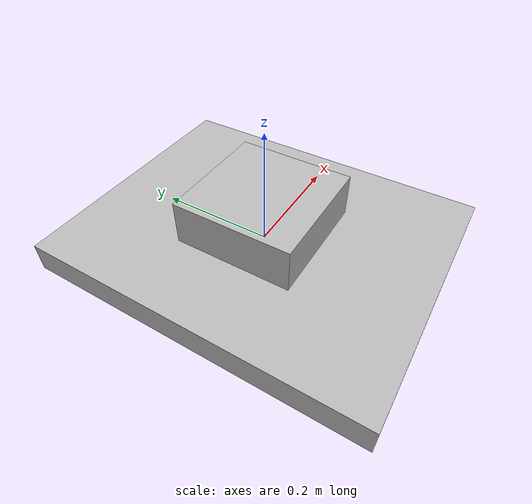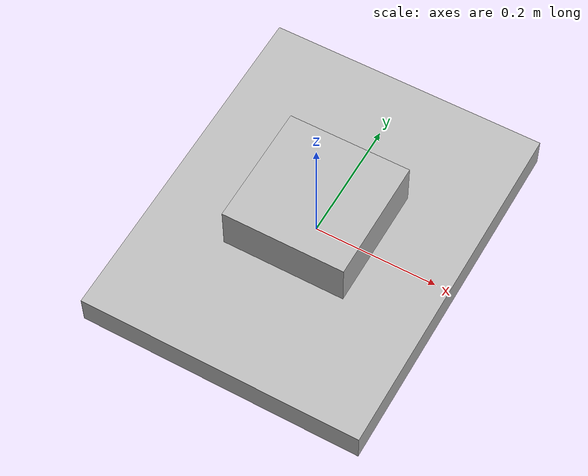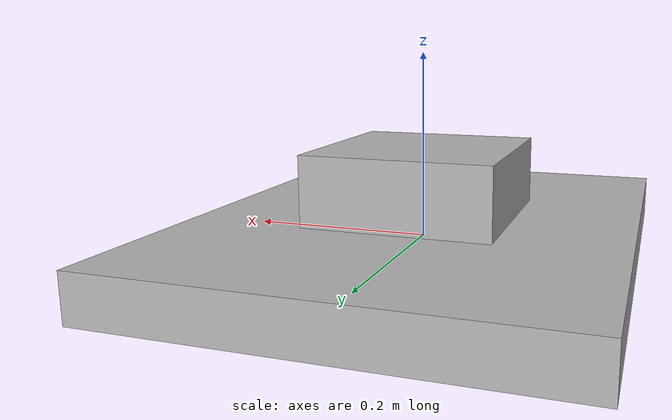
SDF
<?xml version="1.0" ?>
<sdf version="1.6">
<model name="scuba">
    <link name="base_link">
      <inertial>
        <pose>0 0 0 0 0 0</pose>
        <mass>13.0</mass>
        <inertia>
          <ixx>0.26</ixx>
          <ixy>0</ixy>
          <ixz>0</ixz>
          <iyy>0.23</iyy>
          <iyz>0</iyz>
          <izz>0.37</izz>
        </inertia>
      </inertial>

      <visual name="base_link_visual">
        <geometry>
          <box>
            <size>0.457 0.575 0.05</size>
          </box>
        </geometry>
      </visual>

      <collision name="base_link_collision">
        <pose>0 0 0 0 0 0</pose>
        <geometry>
          <box>
            <size>0.457 0.575 0.05</size>
          </box>
        </geometry>
      </collision>

      <sensor name="imu_sensor" type="imu">
        <pose>0 0 0 0 0 0</pose>
        <always_on>1</always_on>
        <update_rate>10.0</update_rate>
      </sensor>
    </link>

     <!-- Hydrodynamics plugin -->
    <plugin
        filename="ignition-gazebo-hydrodynamics-system"
        name="ignition::gazebo::systems::Hydrodynamics">
      <link_name>base_link</link_name>
      <water_density>1000.0</water_density>
      <!-- Added mass: -->
      <xDotU>0</xDotU>
      <yDotV>0</yDotV>
      <zDotW>0</zDotW>
      <kDotP>0</kDotP>
      <mDotQ>0</mDotQ>
      <nDotR>0</nDotR>
      <!-- First order stability derivative: -->
      <xU>0</xU>
      <yV>0</yV>
      <zW>0</zW>
      <kP>0</kP>
      <mQ>0</mQ>
      <nR>0</nR>
      <!-- Second order stability derivative: -->
      <xUabsU>-58.42</xUabsU>
      <yVabsV>-55.137</yVabsV>
      <zWabsW>-124.818</zWabsW>
      <kPabsP>-4.0</kPabsP>
      <mQabsQ>-4.0</mQabsQ>
      <nRabsR>-4.0</nRabsR>
    </plugin>

    <link name="thruster1">
      <pose>0 0 0 0 0 0</pose>
      <visual name="thruster_prop_visual">
        <pose>0 0 0 0 0 0</pose>
        <geometry>
          <box>
             <size>0.2 0.2 0.2</size>
          </box>
        </geometry>
      </visual>
      <inertial>
        <mass>0.002</mass>
        <inertia>
          <ixx>0.001</ixx>
          <ixy>0</ixy>
          <ixz>0</ixz>
          <iyy>0.001</iyy>
          <iyz>0</iyz>
          <izz>0.001</izz>
        </inertia>
      </inertial>
    </link>

    <joint name="thruster1_joint" type="revolute">
      <parent>base_link</parent>
      <child>thruster1</child>
      <axis>
        <xyz>0 0 -1</xyz>
      </axis>
    </joint>

    <plugin
        filename="ignition-gazebo-thruster-system"
        name="ignition::gazebo::systems::Thruster">
      <namespace>bluerov2_heavy</namespace>
      <joint_name>thruster1_joint</joint_name>
      <thrust_coefficient>0.02</thrust_coefficient>
      <fluid_density>1000.0</fluid_density>
      <propeller_diameter>0.1</propeller_diameter>
      <velocity_control>true</velocity_control>
      <use_angvel_cmd>true</use_angvel_cmd>
    </plugin>
</model>
</sdf>
